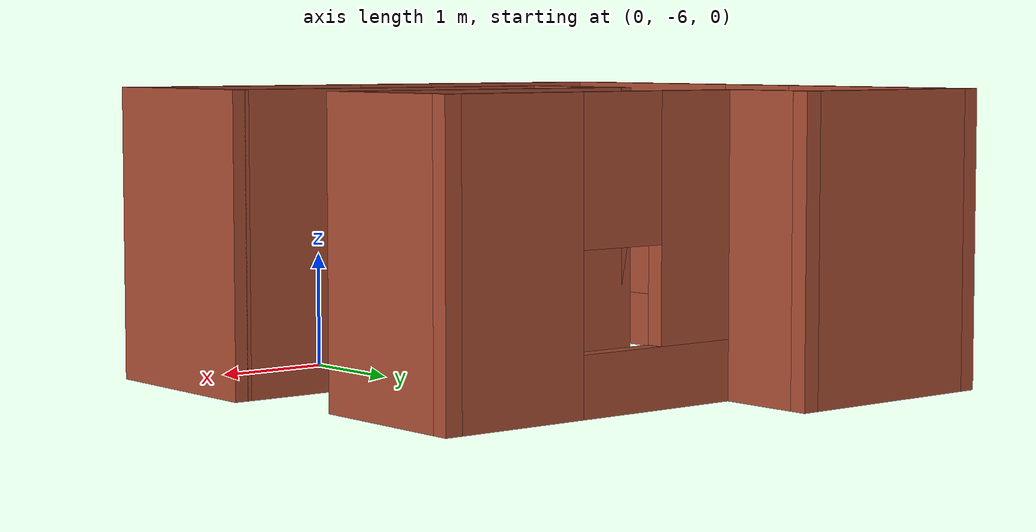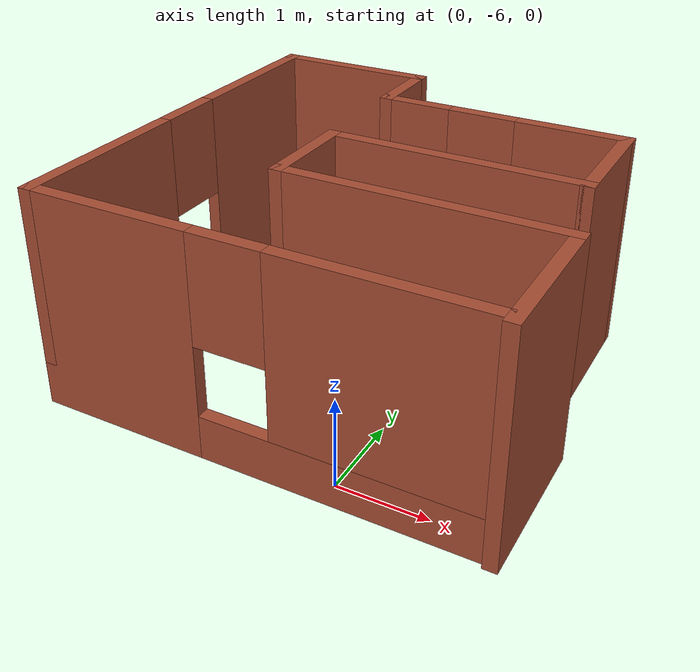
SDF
<?xml version='1.0'?>
<sdf version='1.7'>
  <model name='wall_path'>
    <pose>-0.775 -3.1625 0 0 -0 0</pose>
    <link name='Wall_0'>
      <collision name='Wall_0_Collision'>
        <geometry>
          <box>
            <size>3 0.15 2.5</size>
          </box>
        </geometry>
        <pose>0 0 1.25 0 -0 0</pose>
      </collision>
      <visual name='Wall_0_Visual'>
        <pose>0 0 1.25 0 -0 0</pose>
        <geometry>
          <box>
            <size>3 0.15 2.5</size>
          </box>
        </geometry>
        <material>
          <script>
            <uri>file://media/materials/scripts/gazebo.material</uri>
            <name>Gazebo/Bricks</name>
          </script>
          <ambient>1 1 1 1</ambient>
        </material>
        <meta>
          <layer>0</layer>
        </meta>
      </visual>
      <pose>0.8 -0.3875 0 0 -0 0</pose>
    </link>
    <link name='Wall_1'>
      <collision name='Wall_1_Collision'>
        <geometry>
          <box>
            <size>1.5 0.15 2.5</size>
          </box>
        </geometry>
        <pose>0 0 1.25 0 -0 0</pose>
      </collision>
      <visual name='Wall_1_Visual'>
        <pose>0 0 1.25 0 -0 0</pose>
        <geometry>
          <box>
            <size>1.5 0.15 2.5</size>
          </box>
        </geometry>
        <material>
          <script>
            <uri>file://media/materials/scripts/gazebo.material</uri>
            <name>Gazebo/Bricks</name>
          </script>
          <ambient>1 1 1 1</ambient>
        </material>
        <meta>
          <layer>0</layer>
        </meta>
      </visual>
      <pose>2.225 0.2875 0 0 -0 1.5708</pose>
    </link>
    <link name='Wall_10'>
      <collision name='Wall_10_Collision'>
        <geometry>
          <box>
            <size>1.25 0.15 2.5</size>
          </box>
        </geometry>
        <pose>0 0 1.25 0 -0 0</pose>
      </collision>
      <visual name='Wall_10_Visual'>
        <pose>0 0 1.25 0 -0 0</pose>
        <geometry>
          <box>
            <size>1.25 0.15 2.5</size>
          </box>
        </geometry>
        <material>
          <script>
            <uri>file://media/materials/scripts/gazebo.material</uri>
            <name>Gazebo/Bricks</name>
          </script>
          <ambient>1 1 1 1</ambient>
        </material>
        <meta>
          <layer>0</layer>
        </meta>
      </visual>
      <pose>-0.625 -0.9375 0 0 -0 -1.5708</pose>
    </link>
    <link name='Wall_11'>
      <collision name='Wall_11_Collision'>
        <geometry>
          <box>
            <size>3.25 0.15 2.5</size>
          </box>
        </geometry>
        <pose>0 0 1.25 0 -0 0</pose>
      </collision>
      <visual name='Wall_11_Visual'>
        <pose>0 0 1.25 0 -0 0</pose>
        <geometry>
          <box>
            <size>3.25 0.15 2.5</size>
          </box>
        </geometry>
        <material>
          <script>
            <uri>file://media/materials/scripts/gazebo.material</uri>
            <name>Gazebo/Bricks</name>
          </script>
          <ambient>1 1 1 1</ambient>
        </material>
        <meta>
          <layer>0</layer>
        </meta>
      </visual>
      <pose>0.925 -1.4875 0 0 -0 0</pose>
    </link>
    <link name='Wall_12'>
      <collision name='Wall_12_Collision'>
        <geometry>
          <box>
            <size>1.75 0.15 2.5</size>
          </box>
        </geometry>
        <pose>0 0 1.25 0 -0 0</pose>
      </collision>
      <visual name='Wall_12_Visual'>
        <pose>0 0 1.25 0 -0 0</pose>
        <geometry>
          <box>
            <size>1.75 0.15 2.5</size>
          </box>
        </geometry>
        <material>
          <script>
            <uri>file://media/materials/scripts/gazebo.material</uri>
            <name>Gazebo/Bricks</name>
          </script>
          <ambient>1 1 1 1</ambient>
        </material>
        <meta>
          <layer>0</layer>
        </meta>
      </visual>
      <pose>2.475 -2.2875 0 0 -0 -1.5708</pose>
    </link>
    <link name='Wall_2'>
      <pose>0.8 0.9625 0 0 -0 3.14159</pose>
      <visual name='Wall_2_Visual_0'>
        <pose>-0.840949 0 1.25 0 -0 0</pose>
        <geometry>
          <box>
            <size>1.3181 0.15 2.5</size>
          </box>
        </geometry>
        <material>
          <script>
            <uri>file://media/materials/scripts/gazebo.material</uri>
            <name>Gazebo/Bricks</name>
          </script>
          <ambient>1 1 1 1</ambient>
        </material>
        <meta>
          <layer>0</layer>
        </meta>
      </visual>
      <collision name='Wall_2_Collision_0'>
        <geometry>
          <box>
            <size>1.3181 0.15 2.5</size>
          </box>
        </geometry>
        <pose>-0.840949 0 1.25 0 -0 0</pose>
      </collision>
      <visual name='Wall_2_Visual_1'>
        <pose>0.659051 0 0.25 0 -0 0</pose>
        <geometry>
          <box>
            <size>1.6819 0.15 0.5</size>
          </box>
        </geometry>
        <material>
          <script>
            <uri>file://media/materials/scripts/gazebo.material</uri>
            <name>Gazebo/Bricks</name>
          </script>
          <ambient>1 1 1 1</ambient>
        </material>
        <meta>
          <layer>0</layer>
        </meta>
      </visual>
      <collision name='Wall_2_Collision_1'>
        <geometry>
          <box>
            <size>1.6819 0.15 0.5</size>
          </box>
        </geometry>
        <pose>0.659051 0 0.25 0 -0 0</pose>
      </collision>
      <visual name='Wall_2_Visual_2'>
        <pose>1.05905 0 1.5 0 -0 0</pose>
        <geometry>
          <box>
            <size>0.881897 0.15 2</size>
          </box>
        </geometry>
        <material>
          <script>
            <uri>file://media/materials/scripts/gazebo.material</uri>
            <name>Gazebo/Bricks</name>
          </script>
          <ambient>1 1 1 1</ambient>
        </material>
        <meta>
          <layer>0</layer>
        </meta>
      </visual>
      <collision name='Wall_2_Collision_2'>
        <geometry>
          <box>
            <size>0.881897 0.15 2</size>
          </box>
        </geometry>
        <pose>1.05905 0 1.5 0 -0 0</pose>
      </collision>
      <visual name='Wall_2_Visual_3'>
        <pose>0.218103 0 1.9 0 -0 0</pose>
        <geometry>
          <box>
            <size>0.8 0.15 1.2</size>
          </box>
        </geometry>
        <material>
          <script>
            <uri>file://media/materials/scripts/gazebo.material</uri>
            <name>Gazebo/Bricks</name>
          </script>
          <ambient>1 1 1 1</ambient>
        </material>
        <meta>
          <layer>0</layer>
        </meta>
      </visual>
      <collision name='Wall_2_Collision_3'>
        <geometry>
          <box>
            <size>0.8 0.15 1.2</size>
          </box>
        </geometry>
        <pose>0.218103 0 1.9 0 -0 0</pose>
      </collision>
    </link>
    <link name='Wall_3'>
      <collision name='Wall_3_Collision'>
        <geometry>
          <box>
            <size>1 0.15 2.5</size>
          </box>
        </geometry>
        <pose>0 0 1.25 0 -0 0</pose>
      </collision>
      <visual name='Wall_3_Visual'>
        <pose>0 0 1.25 0 -0 0</pose>
        <geometry>
          <box>
            <size>1 0.15 2.5</size>
          </box>
        </geometry>
        <material>
          <script>
            <uri>file://media/materials/scripts/gazebo.material</uri>
            <name>Gazebo/Bricks</name>
          </script>
          <ambient>1 1 1 1</ambient>
        </material>
        <meta>
          <layer>0</layer>
        </meta>
      </visual>
      <pose>-0.625 1.3875 0 0 -0 1.5708</pose>
    </link>
    <link name='Wall_4'>
      <collision name='Wall_4_Collision'>
        <geometry>
          <box>
            <size>2 0.15 2.5</size>
          </box>
        </geometry>
        <pose>0 0 1.25 0 -0 0</pose>
      </collision>
      <visual name='Wall_4_Visual'>
        <pose>0 0 1.25 0 -0 0</pose>
        <geometry>
          <box>
            <size>2 0.15 2.5</size>
          </box>
        </geometry>
        <material>
          <script>
            <uri>file://media/materials/scripts/gazebo.material</uri>
            <name>Gazebo/Bricks</name>
          </script>
          <ambient>1 1 1 1</ambient>
        </material>
        <meta>
          <layer>0</layer>
        </meta>
      </visual>
      <pose>-1.55 1.8125 0 0 -0 3.14159</pose>
    </link>
    <link name='Wall_7'>
      <pose>-2.475 -0.6125 0 0 -0 -1.5708</pose>
      <visual name='Wall_7_Visual_0'>
        <pose>-1.49547 0 1.25 0 -0 0</pose>
        <geometry>
          <box>
            <size>2.00907 0.15 2.5</size>
          </box>
        </geometry>
        <material>
          <script>
            <uri>file://media/materials/scripts/gazebo.material</uri>
            <name>Gazebo/Bricks</name>
          </script>
          <ambient>1 1 1 1</ambient>
        </material>
        <meta>
          <layer>0</layer>
        </meta>
      </visual>
      <collision name='Wall_7_Collision_0'>
        <geometry>
          <box>
            <size>2.00907 0.15 2.5</size>
          </box>
        </geometry>
        <pose>-1.49547 0 1.25 0 -0 0</pose>
      </collision>
      <visual name='Wall_7_Visual_1'>
        <pose>1.00453 0 0.25 0 -0 0</pose>
        <geometry>
          <box>
            <size>2.99093 0.15 0.5</size>
          </box>
        </geometry>
        <material>
          <script>
            <uri>file://media/materials/scripts/gazebo.material</uri>
            <name>Gazebo/Bricks</name>
          </script>
          <ambient>1 1 1 1</ambient>
        </material>
        <meta>
          <layer>0</layer>
        </meta>
      </visual>
      <collision name='Wall_7_Collision_1'>
        <geometry>
          <box>
            <size>2.99093 0.15 0.5</size>
          </box>
        </geometry>
        <pose>1.00453 0 0.25 0 -0 0</pose>
      </collision>
      <visual name='Wall_7_Visual_2'>
        <pose>1.40454 0 1.5 0 -0 0</pose>
        <geometry>
          <box>
            <size>2.19093 0.15 2</size>
          </box>
        </geometry>
        <material>
          <script>
            <uri>file://media/materials/scripts/gazebo.material</uri>
            <name>Gazebo/Bricks</name>
          </script>
          <ambient>1 1 1 1</ambient>
        </material>
        <meta>
          <layer>0</layer>
        </meta>
      </visual>
      <collision name='Wall_7_Collision_2'>
        <geometry>
          <box>
            <size>2.19093 0.15 2</size>
          </box>
        </geometry>
        <pose>1.40454 0 1.5 0 -0 0</pose>
      </collision>
      <visual name='Wall_7_Visual_3'>
        <pose>-0.090931 0 1.9 0 -0 0</pose>
        <geometry>
          <box>
            <size>0.8 0.15 1.2</size>
          </box>
        </geometry>
        <material>
          <script>
            <uri>file://media/materials/scripts/gazebo.material</uri>
            <name>Gazebo/Bricks</name>
          </script>
          <ambient>1 1 1 1</ambient>
        </material>
        <meta>
          <layer>0</layer>
        </meta>
      </visual>
      <collision name='Wall_7_Collision_3'>
        <geometry>
          <box>
            <size>0.8 0.15 1.2</size>
          </box>
        </geometry>
        <pose>-0.090931 0 1.9 0 -0 0</pose>
      </collision>
    </link>
    <link name='Wall_8'>
      <pose>-0.05 -3.0375 0 0 -0 0</pose>
      <visual name='Wall_8_Visual_0'>
        <pose>-1.51844 0 1.25 0 -0 0</pose>
        <geometry>
          <box>
            <size>1.96312 0.15 2.5</size>
          </box>
        </geometry>
        <material>
          <script>
            <uri>file://media/materials/scripts/gazebo.material</uri>
            <name>Gazebo/Bricks</name>
          </script>
          <ambient>1 1 1 1</ambient>
        </material>
        <meta>
          <layer>0</layer>
        </meta>
      </visual>
      <collision name='Wall_8_Collision_0'>
        <geometry>
          <box>
            <size>1.96312 0.15 2.5</size>
          </box>
        </geometry>
        <pose>-1.51844 0 1.25 0 -0 0</pose>
      </collision>
      <visual name='Wall_8_Visual_1'>
        <pose>0.98156 0 0.25 0 -0 0</pose>
        <geometry>
          <box>
            <size>3.03688 0.15 0.5</size>
          </box>
        </geometry>
        <material>
          <script>
            <uri>file://media/materials/scripts/gazebo.material</uri>
            <name>Gazebo/Bricks</name>
          </script>
          <ambient>1 1 1 1</ambient>
        </material>
        <meta>
          <layer>0</layer>
        </meta>
      </visual>
      <collision name='Wall_8_Collision_1'>
        <geometry>
          <box>
            <size>3.03688 0.15 0.5</size>
          </box>
        </geometry>
        <pose>0.98156 0 0.25 0 -0 0</pose>
      </collision>
      <visual name='Wall_8_Visual_2'>
        <pose>1.38156 0 1.5 0 -0 0</pose>
        <geometry>
          <box>
            <size>2.23688 0.15 2</size>
          </box>
        </geometry>
        <material>
          <script>
            <uri>file://media/materials/scripts/gazebo.material</uri>
            <name>Gazebo/Bricks</name>
          </script>
          <ambient>1 1 1 1</ambient>
        </material>
        <meta>
          <layer>0</layer>
        </meta>
      </visual>
      <collision name='Wall_8_Collision_2'>
        <geometry>
          <box>
            <size>2.23688 0.15 2</size>
          </box>
        </geometry>
        <pose>1.38156 0 1.5 0 -0 0</pose>
      </collision>
      <visual name='Wall_8_Visual_3'>
        <pose>-0.136881 0 1.9 0 -0 0</pose>
        <geometry>
          <box>
            <size>0.8 0.15 1.2</size>
          </box>
        </geometry>
        <material>
          <script>
            <uri>file://media/materials/scripts/gazebo.material</uri>
            <name>Gazebo/Bricks</name>
          </script>
          <ambient>1 1 1 1</ambient>
        </material>
        <meta>
          <layer>0</layer>
        </meta>
      </visual>
      <collision name='Wall_8_Collision_3'>
        <geometry>
          <box>
            <size>0.8 0.15 1.2</size>
          </box>
        </geometry>
        <pose>-0.136881 0 1.9 0 -0 0</pose>
      </collision>
    </link>
    <static>1</static>
  </model>
</sdf>
